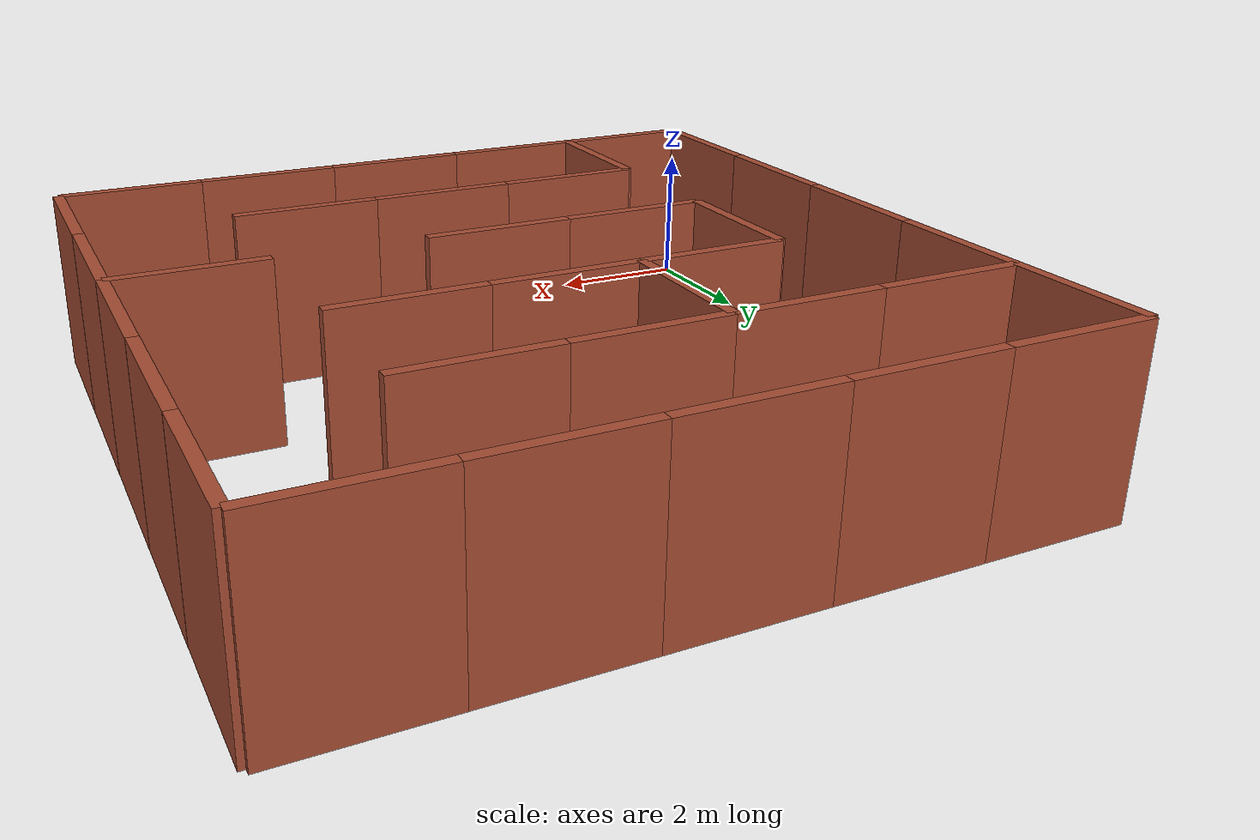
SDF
<sdf version="1.7"><model name="Test_Maze"><pose>0 0 0 0 -0 0</pose><static>1</static><link name="Wall_1"><collision name="Wall_1_Collision"><geometry><box><size>2 0.15 2.5</size></box></geometry><pose>0 0 1.25 0 -0 0</pose></collision><visual name="Wall_1_Visual"><pose>0 0 1.25 0 -0 0</pose><geometry><box><size>2 0.15 2.5</size></box></geometry><material><script><uri>file://media/materials/scripts/gazebo.material</uri><name>Gazebo/Bricks</name></script><ambient>1 1 1 1</ambient></material><meta><layer>0</layer></meta></visual><pose>0 1.0 0 0 0 1.57</pose></link><link name="Wall_2"><collision name="Wall_2_Collision"><geometry><box><size>2 0.15 2.5</size></box></geometry><pose>0 0 1.25 0 -0 0</pose></collision><visual name="Wall_2_Visual"><pose>0 0 1.25 0 -0 0</pose><geometry><box><size>2 0.15 2.5</size></box></geometry><material><script><uri>file://media/materials/scripts/gazebo.material</uri><name>Gazebo/Bricks</name></script><ambient>1 1 1 1</ambient></material><meta><layer>0</layer></meta></visual><pose>2 1.0 0 0 0 1.57</pose></link><link name="Wall_3"><collision name="Wall_3_Collision"><geometry><box><size>2 0.15 2.5</size></box></geometry><pose>0 0 1.25 0 -0 0</pose></collision><visual name="Wall_3_Visual"><pose>0 0 1.25 0 -0 0</pose><geometry><box><size>2 0.15 2.5</size></box></geometry><material><script><uri>file://media/materials/scripts/gazebo.material</uri><name>Gazebo/Bricks</name></script><ambient>1 1 1 1</ambient></material><meta><layer>0</layer></meta></visual><pose>1.0 0 0 0 0 0</pose></link><link name="Wall_4"><collision name="Wall_4_Collision"><geometry><box><size>2 0.15 2.5</size></box></geometry><pose>0 0 1.25 0 -0 0</pose></collision><visual name="Wall_4_Visual"><pose>0 0 1.25 0 -0 0</pose><geometry><box><size>2 0.15 2.5</size></box></geometry><material><script><uri>file://media/materials/scripts/gazebo.material</uri><name>Gazebo/Bricks</name></script><ambient>1 1 1 1</ambient></material><meta><layer>0</layer></meta></visual><pose>2 1.0 0 0 0 1.57</pose></link><link name="Wall_5"><collision name="Wall_5_Collision"><geometry><box><size>2 0.15 2.5</size></box></geometry><pose>0 0 1.25 0 -0 0</pose></collision><visual name="Wall_5_Visual"><pose>0 0 1.25 0 -0 0</pose><geometry><box><size>2 0.15 2.5</size></box></geometry><material><script><uri>file://media/materials/scripts/gazebo.material</uri><name>Gazebo/Bricks</name></script><ambient>1 1 1 1</ambient></material><meta><layer>0</layer></meta></visual><pose>3.0 0 0 0 0 0</pose></link><link name="Wall_6"><collision name="Wall_6_Collision"><geometry><box><size>2 0.15 2.5</size></box></geometry><pose>0 0 1.25 0 -0 0</pose></collision><visual name="Wall_6_Visual"><pose>0 0 1.25 0 -0 0</pose><geometry><box><size>2 0.15 2.5</size></box></geometry><material><script><uri>file://media/materials/scripts/gazebo.material</uri><name>Gazebo/Bricks</name></script><ambient>1 1 1 1</ambient></material><meta><layer>0</layer></meta></visual><pose>3.0 2 0 0 0 0</pose></link><link name="Wall_8"><collision name="Wall_8_Collision"><geometry><box><size>2 0.15 2.5</size></box></geometry><pose>0 0 1.25 0 -0 0</pose></collision><visual name="Wall_8_Visual"><pose>0 0 1.25 0 -0 0</pose><geometry><box><size>2 0.15 2.5</size></box></geometry><material><script><uri>file://media/materials/scripts/gazebo.material</uri><name>Gazebo/Bricks</name></script><ambient>1 1 1 1</ambient></material><meta><layer>0</layer></meta></visual><pose>5.0 0 0 0 0 0</pose></link><link name="Wall_9"><collision name="Wall_9_Collision"><geometry><box><size>2 0.15 2.5</size></box></geometry><pose>0 0 1.25 0 -0 0</pose></collision><visual name="Wall_9_Visual"><pose>0 0 1.25 0 -0 0</pose><geometry><box><size>2 0.15 2.5</size></box></geometry><material><script><uri>file://media/materials/scripts/gazebo.material</uri><name>Gazebo/Bricks</name></script><ambient>1 1 1 1</ambient></material><meta><layer>0</layer></meta></visual><pose>5.0 2 0 0 0 0</pose></link><link name="Wall_11"><collision name="Wall_11_Collision"><geometry><box><size>2 0.15 2.5</size></box></geometry><pose>0 0 1.25 0 -0 0</pose></collision><visual name="Wall_11_Visual"><pose>0 0 1.25 0 -0 0</pose><geometry><box><size>2 0.15 2.5</size></box></geometry><material><script><uri>file://media/materials/scripts/gazebo.material</uri><name>Gazebo/Bricks</name></script><ambient>1 1 1 1</ambient></material><meta><layer>0</layer></meta></visual><pose>7.0 0 0 0 0 0</pose></link><link name="Wall_12"><collision name="Wall_12_Collision"><geometry><box><size>2 0.15 2.5</size></box></geometry><pose>0 0 1.25 0 -0 0</pose></collision><visual name="Wall_12_Visual"><pose>0 0 1.25 0 -0 0</pose><geometry><box><size>2 0.15 2.5</size></box></geometry><material><script><uri>file://media/materials/scripts/gazebo.material</uri><name>Gazebo/Bricks</name></script><ambient>1 1 1 1</ambient></material><meta><layer>0</layer></meta></visual><pose>7.0 2 0 0 0 0</pose></link><link name="Wall_14"><collision name="Wall_14_Collision"><geometry><box><size>2 0.15 2.5</size></box></geometry><pose>0 0 1.25 0 -0 0</pose></collision><visual name="Wall_14_Visual"><pose>0 0 1.25 0 -0 0</pose><geometry><box><size>2 0.15 2.5</size></box></geometry><material><script><uri>file://media/materials/scripts/gazebo.material</uri><name>Gazebo/Bricks</name></script><ambient>1 1 1 1</ambient></material><meta><layer>0</layer></meta></visual><pose>10 1.0 0 0 0 1.57</pose></link><link name="Wall_15"><collision name="Wall_15_Collision"><geometry><box><size>2 0.15 2.5</size></box></geometry><pose>0 0 1.25 0 -0 0</pose></collision><visual name="Wall_15_Visual"><pose>0 0 1.25 0 -0 0</pose><geometry><box><size>2 0.15 2.5</size></box></geometry><material><script><uri>file://media/materials/scripts/gazebo.material</uri><name>Gazebo/Bricks</name></script><ambient>1 1 1 1</ambient></material><meta><layer>0</layer></meta></visual><pose>9.0 0 0 0 0 0</pose></link><link name="Wall_16"><collision name="Wall_16_Collision"><geometry><box><size>2 0.15 2.5</size></box></geometry><pose>0 0 1.25 0 -0 0</pose></collision><visual name="Wall_16_Visual"><pose>0 0 1.25 0 -0 0</pose><geometry><box><size>2 0.15 2.5</size></box></geometry><material><script><uri>file://media/materials/scripts/gazebo.material</uri><name>Gazebo/Bricks</name></script><ambient>1 1 1 1</ambient></material><meta><layer>0</layer></meta></visual><pose>0 3.0 0 0 0 1.57</pose></link><link name="Wall_18"><collision name="Wall_18_Collision"><geometry><box><size>2 0.15 2.5</size></box></geometry><pose>0 0 1.25 0 -0 0</pose></collision><visual name="Wall_18_Visual"><pose>0 0 1.25 0 -0 0</pose><geometry><box><size>2 0.15 2.5</size></box></geometry><material><script><uri>file://media/materials/scripts/gazebo.material</uri><name>Gazebo/Bricks</name></script><ambient>1 1 1 1</ambient></material><meta><layer>0</layer></meta></visual><pose>3.0 2 0 0 0 0</pose></link><link name="Wall_19"><collision name="Wall_19_Collision"><geometry><box><size>2 0.15 2.5</size></box></geometry><pose>0 0 1.25 0 -0 0</pose></collision><visual name="Wall_19_Visual"><pose>0 0 1.25 0 -0 0</pose><geometry><box><size>2 0.15 2.5</size></box></geometry><material><script><uri>file://media/materials/scripts/gazebo.material</uri><name>Gazebo/Bricks</name></script><ambient>1 1 1 1</ambient></material><meta><layer>0</layer></meta></visual><pose>3.0 4 0 0 0 0</pose></link><link name="Wall_21"><collision name="Wall_21_Collision"><geometry><box><size>2 0.15 2.5</size></box></geometry><pose>0 0 1.25 0 -0 0</pose></collision><visual name="Wall_21_Visual"><pose>0 0 1.25 0 -0 0</pose><geometry><box><size>2 0.15 2.5</size></box></geometry><material><script><uri>file://media/materials/scripts/gazebo.material</uri><name>Gazebo/Bricks</name></script><ambient>1 1 1 1</ambient></material><meta><layer>0</layer></meta></visual><pose>5.0 2 0 0 0 0</pose></link><link name="Wall_22"><collision name="Wall_22_Collision"><geometry><box><size>2 0.15 2.5</size></box></geometry><pose>0 0 1.25 0 -0 0</pose></collision><visual name="Wall_22_Visual"><pose>0 0 1.25 0 -0 0</pose><geometry><box><size>2 0.15 2.5</size></box></geometry><material><script><uri>file://media/materials/scripts/gazebo.material</uri><name>Gazebo/Bricks</name></script><ambient>1 1 1 1</ambient></material><meta><layer>0</layer></meta></visual><pose>5.0 4 0 0 0 0</pose></link><link name="Wall_24"><collision name="Wall_24_Collision"><geometry><box><size>2 0.15 2.5</size></box></geometry><pose>0 0 1.25 0 -0 0</pose></collision><visual name="Wall_24_Visual"><pose>0 0 1.25 0 -0 0</pose><geometry><box><size>2 0.15 2.5</size></box></geometry><material><script><uri>file://media/materials/scripts/gazebo.material</uri><name>Gazebo/Bricks</name></script><ambient>1 1 1 1</ambient></material><meta><layer>0</layer></meta></visual><pose>7.0 2 0 0 0 0</pose></link><link name="Wall_26"><collision name="Wall_26_Collision"><geometry><box><size>2 0.15 2.5</size></box></geometry><pose>0 0 1.25 0 -0 0</pose></collision><visual name="Wall_26_Visual"><pose>0 0 1.25 0 -0 0</pose><geometry><box><size>2 0.15 2.5</size></box></geometry><material><script><uri>file://media/materials/scripts/gazebo.material</uri><name>Gazebo/Bricks</name></script><ambient>1 1 1 1</ambient></material><meta><layer>0</layer></meta></visual><pose>10 3.0 0 0 0 1.57</pose></link><link name="Wall_27"><collision name="Wall_27_Collision"><geometry><box><size>2 0.15 2.5</size></box></geometry><pose>0 0 1.25 0 -0 0</pose></collision><visual name="Wall_27_Visual"><pose>0 0 1.25 0 -0 0</pose><geometry><box><size>2 0.15 2.5</size></box></geometry><material><script><uri>file://media/materials/scripts/gazebo.material</uri><name>Gazebo/Bricks</name></script><ambient>1 1 1 1</ambient></material><meta><layer>0</layer></meta></visual><pose>9.0 4 0 0 0 0</pose></link><link name="Wall_28"><collision name="Wall_28_Collision"><geometry><box><size>2 0.15 2.5</size></box></geometry><pose>0 0 1.25 0 -0 0</pose></collision><visual name="Wall_28_Visual"><pose>0 0 1.25 0 -0 0</pose><geometry><box><size>2 0.15 2.5</size></box></geometry><material><script><uri>file://media/materials/scripts/gazebo.material</uri><name>Gazebo/Bricks</name></script><ambient>1 1 1 1</ambient></material><meta><layer>0</layer></meta></visual><pose>0 5.0 0 0 0 1.57</pose></link><link name="Wall_29"><collision name="Wall_29_Collision"><geometry><box><size>2 0.15 2.5</size></box></geometry><pose>0 0 1.25 0 -0 0</pose></collision><visual name="Wall_29_Visual"><pose>0 0 1.25 0 -0 0</pose><geometry><box><size>2 0.15 2.5</size></box></geometry><material><script><uri>file://media/materials/scripts/gazebo.material</uri><name>Gazebo/Bricks</name></script><ambient>1 1 1 1</ambient></material><meta><layer>0</layer></meta></visual><pose>2 5.0 0 0 0 1.57</pose></link><link name="Wall_30"><collision name="Wall_30_Collision"><geometry><box><size>2 0.15 2.5</size></box></geometry><pose>0 0 1.25 0 -0 0</pose></collision><visual name="Wall_30_Visual"><pose>0 0 1.25 0 -0 0</pose><geometry><box><size>2 0.15 2.5</size></box></geometry><material><script><uri>file://media/materials/scripts/gazebo.material</uri><name>Gazebo/Bricks</name></script><ambient>1 1 1 1</ambient></material><meta><layer>0</layer></meta></visual><pose>2 5.0 0 0 0 1.57</pose></link><link name="Wall_31"><collision name="Wall_31_Collision"><geometry><box><size>2 0.15 2.5</size></box></geometry><pose>0 0 1.25 0 -0 0</pose></collision><visual name="Wall_31_Visual"><pose>0 0 1.25 0 -0 0</pose><geometry><box><size>2 0.15 2.5</size></box></geometry><material><script><uri>file://media/materials/scripts/gazebo.material</uri><name>Gazebo/Bricks</name></script><ambient>1 1 1 1</ambient></material><meta><layer>0</layer></meta></visual><pose>3.0 4 0 0 0 0</pose></link><link name="Wall_32"><collision name="Wall_32_Collision"><geometry><box><size>2 0.15 2.5</size></box></geometry><pose>0 0 1.25 0 -0 0</pose></collision><visual name="Wall_32_Visual"><pose>0 0 1.25 0 -0 0</pose><geometry><box><size>2 0.15 2.5</size></box></geometry><material><script><uri>file://media/materials/scripts/gazebo.material</uri><name>Gazebo/Bricks</name></script><ambient>1 1 1 1</ambient></material><meta><layer>0</layer></meta></visual><pose>3.0 6 0 0 0 0</pose></link><link name="Wall_34"><collision name="Wall_34_Collision"><geometry><box><size>2 0.15 2.5</size></box></geometry><pose>0 0 1.25 0 -0 0</pose></collision><visual name="Wall_34_Visual"><pose>0 0 1.25 0 -0 0</pose><geometry><box><size>2 0.15 2.5</size></box></geometry><material><script><uri>file://media/materials/scripts/gazebo.material</uri><name>Gazebo/Bricks</name></script><ambient>1 1 1 1</ambient></material><meta><layer>0</layer></meta></visual><pose>5.0 4 0 0 0 0</pose></link><link name="Wall_35"><collision name="Wall_35_Collision"><geometry><box><size>2 0.15 2.5</size></box></geometry><pose>0 0 1.25 0 -0 0</pose></collision><visual name="Wall_35_Visual"><pose>0 0 1.25 0 -0 0</pose><geometry><box><size>2 0.15 2.5</size></box></geometry><material><script><uri>file://media/materials/scripts/gazebo.material</uri><name>Gazebo/Bricks</name></script><ambient>1 1 1 1</ambient></material><meta><layer>0</layer></meta></visual><pose>5.0 6 0 0 0 0</pose></link><link name="Wall_37"><collision name="Wall_37_Collision"><geometry><box><size>2 0.15 2.5</size></box></geometry><pose>0 0 1.25 0 -0 0</pose></collision><visual name="Wall_37_Visual"><pose>0 0 1.25 0 -0 0</pose><geometry><box><size>2 0.15 2.5</size></box></geometry><material><script><uri>file://media/materials/scripts/gazebo.material</uri><name>Gazebo/Bricks</name></script><ambient>1 1 1 1</ambient></material><meta><layer>0</layer></meta></visual><pose>7.0 6 0 0 0 0</pose></link><link name="Wall_39"><collision name="Wall_39_Collision"><geometry><box><size>2 0.15 2.5</size></box></geometry><pose>0 0 1.25 0 -0 0</pose></collision><visual name="Wall_39_Visual"><pose>0 0 1.25 0 -0 0</pose><geometry><box><size>2 0.15 2.5</size></box></geometry><material><script><uri>file://media/materials/scripts/gazebo.material</uri><name>Gazebo/Bricks</name></script><ambient>1 1 1 1</ambient></material><meta><layer>0</layer></meta></visual><pose>10 5.0 0 0 0 1.57</pose></link><link name="Wall_40"><collision name="Wall_40_Collision"><geometry><box><size>2 0.15 2.5</size></box></geometry><pose>0 0 1.25 0 -0 0</pose></collision><visual name="Wall_40_Visual"><pose>0 0 1.25 0 -0 0</pose><geometry><box><size>2 0.15 2.5</size></box></geometry><material><script><uri>file://media/materials/scripts/gazebo.material</uri><name>Gazebo/Bricks</name></script><ambient>1 1 1 1</ambient></material><meta><layer>0</layer></meta></visual><pose>9.0 4 0 0 0 0</pose></link><link name="Wall_41"><collision name="Wall_41_Collision"><geometry><box><size>2 0.15 2.5</size></box></geometry><pose>0 0 1.25 0 -0 0</pose></collision><visual name="Wall_41_Visual"><pose>0 0 1.25 0 -0 0</pose><geometry><box><size>2 0.15 2.5</size></box></geometry><material><script><uri>file://media/materials/scripts/gazebo.material</uri><name>Gazebo/Bricks</name></script><ambient>1 1 1 1</ambient></material><meta><layer>0</layer></meta></visual><pose>0 7.0 0 0 0 1.57</pose></link><link name="Wall_42"><collision name="Wall_42_Collision"><geometry><box><size>2 0.15 2.5</size></box></geometry><pose>0 0 1.25 0 -0 0</pose></collision><visual name="Wall_42_Visual"><pose>0 0 1.25 0 -0 0</pose><geometry><box><size>2 0.15 2.5</size></box></geometry><material><script><uri>file://media/materials/scripts/gazebo.material</uri><name>Gazebo/Bricks</name></script><ambient>1 1 1 1</ambient></material><meta><layer>0</layer></meta></visual><pose>1.0 8 0 0 0 0</pose></link><link name="Wall_44"><collision name="Wall_44_Collision"><geometry><box><size>2 0.15 2.5</size></box></geometry><pose>0 0 1.25 0 -0 0</pose></collision><visual name="Wall_44_Visual"><pose>0 0 1.25 0 -0 0</pose><geometry><box><size>2 0.15 2.5</size></box></geometry><material><script><uri>file://media/materials/scripts/gazebo.material</uri><name>Gazebo/Bricks</name></script><ambient>1 1 1 1</ambient></material><meta><layer>0</layer></meta></visual><pose>4 7.0 0 0 0 1.57</pose></link><link name="Wall_45"><collision name="Wall_45_Collision"><geometry><box><size>2 0.15 2.5</size></box></geometry><pose>0 0 1.25 0 -0 0</pose></collision><visual name="Wall_45_Visual"><pose>0 0 1.25 0 -0 0</pose><geometry><box><size>2 0.15 2.5</size></box></geometry><material><script><uri>file://media/materials/scripts/gazebo.material</uri><name>Gazebo/Bricks</name></script><ambient>1 1 1 1</ambient></material><meta><layer>0</layer></meta></visual><pose>3.0 6 0 0 0 0</pose></link><link name="Wall_46"><collision name="Wall_46_Collision"><geometry><box><size>2 0.15 2.5</size></box></geometry><pose>0 0 1.25 0 -0 0</pose></collision><visual name="Wall_46_Visual"><pose>0 0 1.25 0 -0 0</pose><geometry><box><size>2 0.15 2.5</size></box></geometry><material><script><uri>file://media/materials/scripts/gazebo.material</uri><name>Gazebo/Bricks</name></script><ambient>1 1 1 1</ambient></material><meta><layer>0</layer></meta></visual><pose>3.0 8 0 0 0 0</pose></link><link name="Wall_47"><collision name="Wall_47_Collision"><geometry><box><size>2 0.15 2.5</size></box></geometry><pose>0 0 1.25 0 -0 0</pose></collision><visual name="Wall_47_Visual"><pose>0 0 1.25 0 -0 0</pose><geometry><box><size>2 0.15 2.5</size></box></geometry><material><script><uri>file://media/materials/scripts/gazebo.material</uri><name>Gazebo/Bricks</name></script><ambient>1 1 1 1</ambient></material><meta><layer>0</layer></meta></visual><pose>4 7.0 0 0 0 1.57</pose></link><link name="Wall_48"><collision name="Wall_48_Collision"><geometry><box><size>2 0.15 2.5</size></box></geometry><pose>0 0 1.25 0 -0 0</pose></collision><visual name="Wall_48_Visual"><pose>0 0 1.25 0 -0 0</pose><geometry><box><size>2 0.15 2.5</size></box></geometry><material><script><uri>file://media/materials/scripts/gazebo.material</uri><name>Gazebo/Bricks</name></script><ambient>1 1 1 1</ambient></material><meta><layer>0</layer></meta></visual><pose>5.0 6 0 0 0 0</pose></link><link name="Wall_49"><collision name="Wall_49_Collision"><geometry><box><size>2 0.15 2.5</size></box></geometry><pose>0 0 1.25 0 -0 0</pose></collision><visual name="Wall_49_Visual"><pose>0 0 1.25 0 -0 0</pose><geometry><box><size>2 0.15 2.5</size></box></geometry><material><script><uri>file://media/materials/scripts/gazebo.material</uri><name>Gazebo/Bricks</name></script><ambient>1 1 1 1</ambient></material><meta><layer>0</layer></meta></visual><pose>5.0 8 0 0 0 0</pose></link><link name="Wall_51"><collision name="Wall_51_Collision"><geometry><box><size>2 0.15 2.5</size></box></geometry><pose>0 0 1.25 0 -0 0</pose></collision><visual name="Wall_51_Visual"><pose>0 0 1.25 0 -0 0</pose><geometry><box><size>2 0.15 2.5</size></box></geometry><material><script><uri>file://media/materials/scripts/gazebo.material</uri><name>Gazebo/Bricks</name></script><ambient>1 1 1 1</ambient></material><meta><layer>0</layer></meta></visual><pose>7.0 6 0 0 0 0</pose></link><link name="Wall_52"><collision name="Wall_52_Collision"><geometry><box><size>2 0.15 2.5</size></box></geometry><pose>0 0 1.25 0 -0 0</pose></collision><visual name="Wall_52_Visual"><pose>0 0 1.25 0 -0 0</pose><geometry><box><size>2 0.15 2.5</size></box></geometry><material><script><uri>file://media/materials/scripts/gazebo.material</uri><name>Gazebo/Bricks</name></script><ambient>1 1 1 1</ambient></material><meta><layer>0</layer></meta></visual><pose>7.0 8 0 0 0 0</pose></link><link name="Wall_54"><collision name="Wall_54_Collision"><geometry><box><size>2 0.15 2.5</size></box></geometry><pose>0 0 1.25 0 -0 0</pose></collision><visual name="Wall_54_Visual"><pose>0 0 1.25 0 -0 0</pose><geometry><box><size>2 0.15 2.5</size></box></geometry><material><script><uri>file://media/materials/scripts/gazebo.material</uri><name>Gazebo/Bricks</name></script><ambient>1 1 1 1</ambient></material><meta><layer>0</layer></meta></visual><pose>10 7.0 0 0 0 1.57</pose></link><link name="Wall_55"><collision name="Wall_55_Collision"><geometry><box><size>2 0.15 2.5</size></box></geometry><pose>0 0 1.25 0 -0 0</pose></collision><visual name="Wall_55_Visual"><pose>0 0 1.25 0 -0 0</pose><geometry><box><size>2 0.15 2.5</size></box></geometry><material><script><uri>file://media/materials/scripts/gazebo.material</uri><name>Gazebo/Bricks</name></script><ambient>1 1 1 1</ambient></material><meta><layer>0</layer></meta></visual><pose>0 9.0 0 0 0 1.57</pose></link><link name="Wall_56"><collision name="Wall_56_Collision"><geometry><box><size>2 0.15 2.5</size></box></geometry><pose>0 0 1.25 0 -0 0</pose></collision><visual name="Wall_56_Visual"><pose>0 0 1.25 0 -0 0</pose><geometry><box><size>2 0.15 2.5</size></box></geometry><material><script><uri>file://media/materials/scripts/gazebo.material</uri><name>Gazebo/Bricks</name></script><ambient>1 1 1 1</ambient></material><meta><layer>0</layer></meta></visual><pose>1.0 8 0 0 0 0</pose></link><link name="Wall_57"><collision name="Wall_57_Collision"><geometry><box><size>2 0.15 2.5</size></box></geometry><pose>0 0 1.25 0 -0 0</pose></collision><visual name="Wall_57_Visual"><pose>0 0 1.25 0 -0 0</pose><geometry><box><size>2 0.15 2.5</size></box></geometry><material><script><uri>file://media/materials/scripts/gazebo.material</uri><name>Gazebo/Bricks</name></script><ambient>1 1 1 1</ambient></material><meta><layer>0</layer></meta></visual><pose>1.0 10 0 0 0 0</pose></link><link name="Wall_59"><collision name="Wall_59_Collision"><geometry><box><size>2 0.15 2.5</size></box></geometry><pose>0 0 1.25 0 -0 0</pose></collision><visual name="Wall_59_Visual"><pose>0 0 1.25 0 -0 0</pose><geometry><box><size>2 0.15 2.5</size></box></geometry><material><script><uri>file://media/materials/scripts/gazebo.material</uri><name>Gazebo/Bricks</name></script><ambient>1 1 1 1</ambient></material><meta><layer>0</layer></meta></visual><pose>3.0 8 0 0 0 0</pose></link><link name="Wall_60"><collision name="Wall_60_Collision"><geometry><box><size>2 0.15 2.5</size></box></geometry><pose>0 0 1.25 0 -0 0</pose></collision><visual name="Wall_60_Visual"><pose>0 0 1.25 0 -0 0</pose><geometry><box><size>2 0.15 2.5</size></box></geometry><material><script><uri>file://media/materials/scripts/gazebo.material</uri><name>Gazebo/Bricks</name></script><ambient>1 1 1 1</ambient></material><meta><layer>0</layer></meta></visual><pose>3.0 10 0 0 0 0</pose></link><link name="Wall_62"><collision name="Wall_62_Collision"><geometry><box><size>2 0.15 2.5</size></box></geometry><pose>0 0 1.25 0 -0 0</pose></collision><visual name="Wall_62_Visual"><pose>0 0 1.25 0 -0 0</pose><geometry><box><size>2 0.15 2.5</size></box></geometry><material><script><uri>file://media/materials/scripts/gazebo.material</uri><name>Gazebo/Bricks</name></script><ambient>1 1 1 1</ambient></material><meta><layer>0</layer></meta></visual><pose>5.0 8 0 0 0 0</pose></link><link name="Wall_63"><collision name="Wall_63_Collision"><geometry><box><size>2 0.15 2.5</size></box></geometry><pose>0 0 1.25 0 -0 0</pose></collision><visual name="Wall_63_Visual"><pose>0 0 1.25 0 -0 0</pose><geometry><box><size>2 0.15 2.5</size></box></geometry><material><script><uri>file://media/materials/scripts/gazebo.material</uri><name>Gazebo/Bricks</name></script><ambient>1 1 1 1</ambient></material><meta><layer>0</layer></meta></visual><pose>5.0 10 0 0 0 0</pose></link><link name="Wall_65"><collision name="Wall_65_Collision"><geometry><box><size>2 0.15 2.5</size></box></geometry><pose>0 0 1.25 0 -0 0</pose></collision><visual name="Wall_65_Visual"><pose>0 0 1.25 0 -0 0</pose><geometry><box><size>2 0.15 2.5</size></box></geometry><material><script><uri>file://media/materials/scripts/gazebo.material</uri><name>Gazebo/Bricks</name></script><ambient>1 1 1 1</ambient></material><meta><layer>0</layer></meta></visual><pose>7.0 8 0 0 0 0</pose></link><link name="Wall_66"><collision name="Wall_66_Collision"><geometry><box><size>2 0.15 2.5</size></box></geometry><pose>0 0 1.25 0 -0 0</pose></collision><visual name="Wall_66_Visual"><pose>0 0 1.25 0 -0 0</pose><geometry><box><size>2 0.15 2.5</size></box></geometry><material><script><uri>file://media/materials/scripts/gazebo.material</uri><name>Gazebo/Bricks</name></script><ambient>1 1 1 1</ambient></material><meta><layer>0</layer></meta></visual><pose>7.0 10 0 0 0 0</pose></link><link name="Wall_68"><collision name="Wall_68_Collision"><geometry><box><size>2 0.15 2.5</size></box></geometry><pose>0 0 1.25 0 -0 0</pose></collision><visual name="Wall_68_Visual"><pose>0 0 1.25 0 -0 0</pose><geometry><box><size>2 0.15 2.5</size></box></geometry><material><script><uri>file://media/materials/scripts/gazebo.material</uri><name>Gazebo/Bricks</name></script><ambient>1 1 1 1</ambient></material><meta><layer>0</layer></meta></visual><pose>10 9.0 0 0 0 1.57</pose></link><link name="Wall_69"><collision name="Wall_69_Collision"><geometry><box><size>2 0.15 2.5</size></box></geometry><pose>0 0 1.25 0 -0 0</pose></collision><visual name="Wall_69_Visual"><pose>0 0 1.25 0 -0 0</pose><geometry><box><size>2 0.15 2.5</size></box></geometry><material><script><uri>file://media/materials/scripts/gazebo.material</uri><name>Gazebo/Bricks</name></script><ambient>1 1 1 1</ambient></material><meta><layer>0</layer></meta></visual><pose>9.0 10 0 0 0 0</pose></link></model></sdf>
